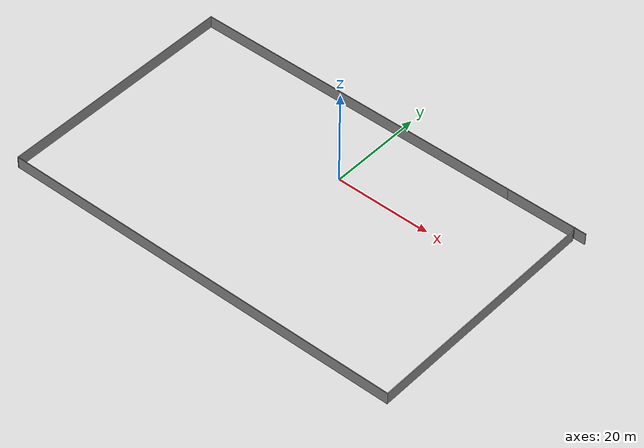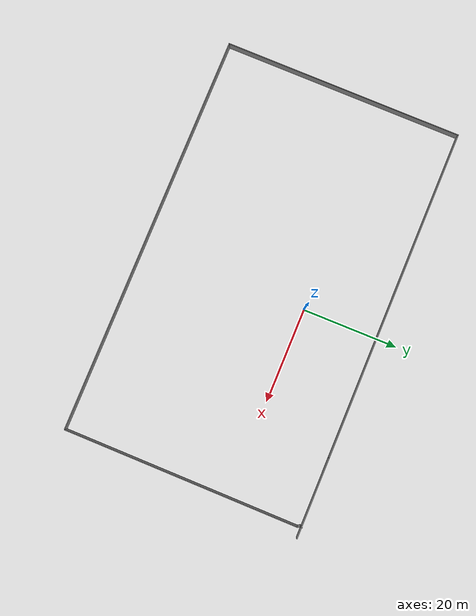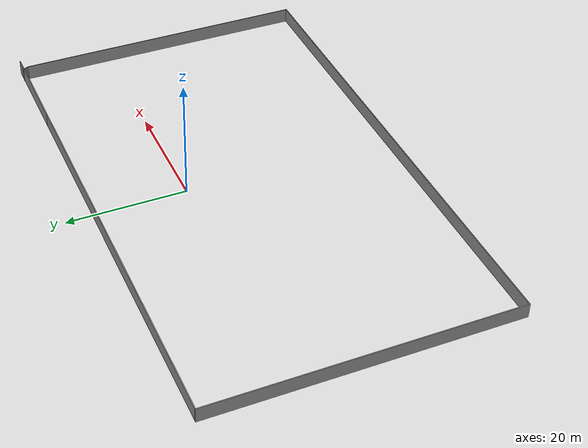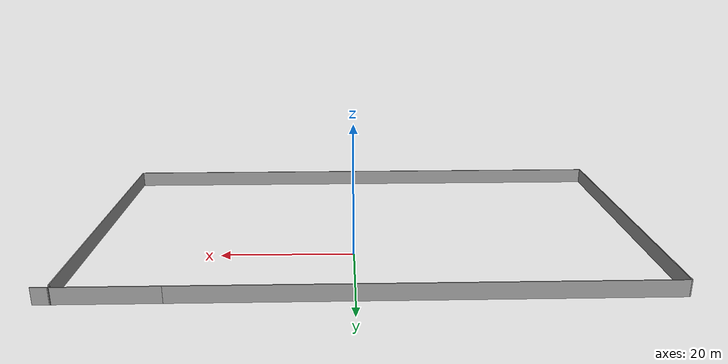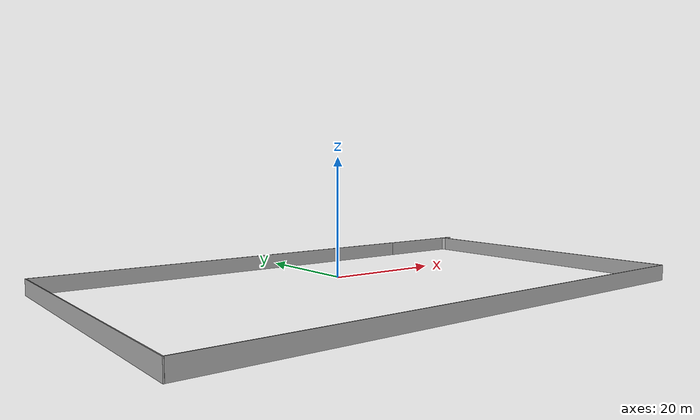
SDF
<?xml version='1.0'?>
<sdf version='1.7'>
  <model name='wall'>
    <pose>-1.24604 -9.56787 0 0 -0 0</pose>
    <link name='Wall_1'>
      <collision name='Wall_1_Collision'>
        <geometry>
          <box>
            <size>17 0.15 2.5</size>
          </box>
        </geometry>
        <pose>0 0 1.25 0 -0 0</pose>
      </collision>
      <visual name='Wall_1_Visual'>
        <pose>0 0 1.25 0 -0 0</pose>
        <geometry>
          <box>
            <size>17 0.15 2.5</size>
          </box>
        </geometry>
        <material>
          <script>
            <uri>file://media/materials/scripts/gazebo.material</uri>
            <name>Gazebo/Grey</name>
          </script>
          <ambient>1 1 1 1</ambient>
        </material>
        <meta>
          <layer>0</layer>
        </meta>
      </visual>
      <pose>34.9691 25.1127 0 0 -0 3.14159</pose>
    </link>
    <link name='Wall_2'>
      <collision name='Wall_2_Collision'>
        <geometry>
          <box>
            <size>69.9264 0.15 2.5</size>
          </box>
        </geometry>
        <pose>0 0 1.25 0 -0 0</pose>
      </collision>
      <visual name='Wall_2_Visual'>
        <pose>0 0 1.25 0 -0 0</pose>
        <geometry>
          <box>
            <size>69.9264 0.15 2.5</size>
          </box>
        </geometry>
        <material>
          <script>
            <uri>file://media/materials/scripts/gazebo.material</uri>
            <name>Gazebo/Grey</name>
          </script>
          <ambient>1 1 1 1</ambient>
        </material>
        <meta>
          <layer>0</layer>
        </meta>
      </visual>
      <pose>-8.34409 25.1127 0 0 -0 3.14159</pose>
    </link>
    <link name='Wall_3'>
      <collision name='Wall_3_Collision'>
        <geometry>
          <box>
            <size>50.5 0.15 2.5</size>
          </box>
        </geometry>
        <pose>0 0 1.25 0 -0 0</pose>
      </collision>
      <visual name='Wall_3_Visual'>
        <pose>0 0 1.25 0 -0 0</pose>
        <geometry>
          <box>
            <size>50.5 0.15 2.5</size>
          </box>
        </geometry>
        <material>
          <script>
            <uri>file://media/materials/scripts/gazebo.material</uri>
            <name>Gazebo/Grey</name>
          </script>
          <ambient>1 1 1 1</ambient>
        </material>
        <meta>
          <layer>0</layer>
        </meta>
      </visual>
      <pose>-43.3941 -0.06227 0 0 -0 -1.5708</pose>
    </link>
    <link name='Wall_4'>
      <collision name='Wall_4_Collision'>
        <geometry>
          <box>
            <size>84.6764 0.15 2.5</size>
          </box>
        </geometry>
        <pose>0 0 1.25 0 -0 0</pose>
      </collision>
      <visual name='Wall_4_Visual'>
        <pose>0 0 1.25 0 -0 0</pose>
        <geometry>
          <box>
            <size>84.6764 0.15 2.5</size>
          </box>
        </geometry>
        <material>
          <script>
            <uri>file://media/materials/scripts/gazebo.material</uri>
            <name>Gazebo/Grey</name>
          </script>
          <ambient>1 1 1 1</ambient>
        </material>
        <meta>
          <layer>0</layer>
        </meta>
      </visual>
      <pose>-0.969088 -25.2373 0 0 -0 0</pose>
    </link>
    <link name='Wall_5'>
      <collision name='Wall_5_Collision'>
        <geometry>
          <box>
            <size>49.75 0.15 2.5</size>
          </box>
        </geometry>
        <pose>0 0 1.25 0 -0 0</pose>
      </collision>
      <visual name='Wall_5_Visual'>
        <pose>0 0 1.25 0 -0 0</pose>
        <geometry>
          <box>
            <size>49.75 0.15 2.5</size>
          </box>
        </geometry>
        <material>
          <script>
            <uri>file://media/materials/scripts/gazebo.material</uri>
            <name>Gazebo/Grey</name>
          </script>
          <ambient>1 1 1 1</ambient>
        </material>
        <meta>
          <layer>0</layer>
        </meta>
      </visual>
      <pose>41.2941 -0.43727 0 0 -0 1.5708</pose>
    </link>
    <link name='Wall_6'>
      <collision name='Wall_6_Collision'>
        <geometry>
          <box>
            <size>0.75 0.15 2.5</size>
          </box>
        </geometry>
        <pose>0 0 1.25 0 -0 0</pose>
      </collision>
      <visual name='Wall_6_Visual'>
        <pose>0 0 1.25 0 -0 0</pose>
        <geometry>
          <box>
            <size>0.75 0.15 2.5</size>
          </box>
        </geometry>
        <material>
          <script>
            <uri>file://media/materials/scripts/gazebo.material</uri>
            <name>Gazebo/Grey</name>
          </script>
          <ambient>1 1 1 1</ambient>
        </material>
        <meta>
          <layer>0</layer>
        </meta>
      </visual>
      <pose>41.1441 24.6225 0 0 -0 2.0944</pose>
    </link>
    <link name='Wall_7'>
      <collision name='Wall_7_Collision'>
        <geometry>
          <box>
            <size>0.5 0.15 2.5</size>
          </box>
        </geometry>
        <pose>0 0 1.25 0 -0 0</pose>
      </collision>
      <visual name='Wall_7_Visual'>
        <pose>0 0 1.25 0 -0 0</pose>
        <geometry>
          <box>
            <size>0.5 0.15 2.5</size>
          </box>
        </geometry>
        <material>
          <script>
            <uri>file://media/materials/scripts/gazebo.material</uri>
            <name>Gazebo/Grey</name>
          </script>
          <ambient>1 1 1 1</ambient>
        </material>
        <meta>
          <layer>0</layer>
        </meta>
      </visual>
      <pose>41.0394 25.0514 0 0 -0 1.309</pose>
    </link>
    <static>1</static>
  </model>
</sdf>
